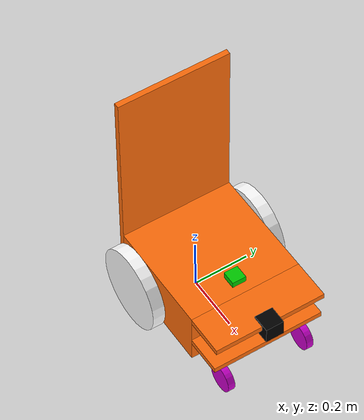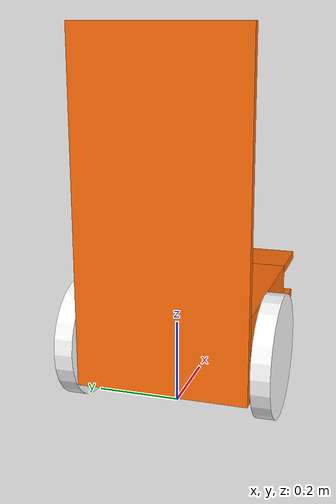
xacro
<?xml version="1.0"?>
<robot xmlns:xacro="http://www.ros.org/wiki/xacro" name="orne_box">
  <xacro:property name="PI" value="3.1415926535897931"/>
  <xacro:include filename="$(find orne_box_description)/urdf/material_colors.xacro"/>
  <xacro:include filename="$(find orne_box_description)/urdf/links/base_link.urdf.xacro"/>
  <xacro:include filename="$(find orne_box_description)/urdf/links/caster_wheel_link.urdf.xacro"/>
  <xacro:include filename="$(find orne_box_description)/urdf/links/caster_swivel_link.urdf.xacro"/>
  <xacro:include filename="$(find orne_box_description)/urdf/links/wheel_link.urdf.xacro"/>
  <xacro:include filename="$(find orne_box_description)/urdf/joints/caster_wheel_joint.urdf.xacro"/>
  <xacro:include filename="$(find orne_box_description)/urdf/joints/caster_swivel_joint.urdf.xacro"/>
  <xacro:include filename="$(find orne_box_description)/urdf/joints/wheel_joint.urdf.xacro"/>
  <xacro:include filename="$(find orne_box_description)/urdf/sensors/imu.urdf.xacro"/>
  <xacro:include filename="$(find orne_box_description)/urdf/sensors/mid360.urdf.xacro"/>
  <!-- Setting for base -->
  <xacro:base_link/>
  <!-- Setting for caster -->
  <xacro:caster_wheel_link prefix="left"/>
  <xacro:caster_swivel_link prefix="left"/>
  <xacro:caster_wheel_joint prefix="left"/>
  <xacro:caster_swivel_joint prefix="left" parent="base_link">
    <origin xyz="0.362 0.150 0.108" rpy="0 0 0"/>
  </xacro:caster_swivel_joint>
  <xacro:caster_wheel_link prefix="right"/>
  <xacro:caster_swivel_link prefix="right"/>
  <xacro:caster_wheel_joint prefix="right"/>
  <xacro:caster_swivel_joint prefix="right" parent="base_link">
    <origin xyz="0.362 -0.150 0.108" rpy="0 0 0"/>
  </xacro:caster_swivel_joint>
  <!-- Setting for left wheel -->
  <xacro:wheel_joint prefix="left" parent="base_link">
    <origin xyz="0.0 0.23075 0.145" rpy="${-PI/2} 0 0"/>
    <axis xyz="0 0 1"/>
  </xacro:wheel_joint>
  <xacro:wheel_link prefix="left" width="0.045" radius="0.145">
    <origin xyz="0.0 0.0 0.0" rpy="0 0 0"/>
  </xacro:wheel_link>
  <!-- Setting for right wheel -->
  <xacro:wheel_joint prefix="right" parent="base_link">
    <origin xyz="0.0 -0.23075 0.145" rpy="${-PI/2} 0 0"/>
    <axis xyz="0 0 1"/>
  </xacro:wheel_joint>
  <xacro:wheel_link prefix="right" width="0.045" radius="0.145">
    <origin xyz="0.0 0.0 0.0" rpy="0 0 0"/>
  </xacro:wheel_link>
  <!-- Setting for IMU -->
  <xacro:sensor_imu name="imu" parent="base_link" size="0.05 0.05 0.05">
    <origin xyz="0.23 0.0 0.270" rpy="0 0 0"/>
    <origin_child xyz="0.0 0.0 0.0" rpy="0 0 0"/>
  </xacro:sensor_imu>

  <xacro:sensor_mid360 name="livox_frame" parent="base_link">
	  <origin xyz="0.424 0.0 0.203" rpy="0 3.14159 ${PI/2}"/>
  </xacro:sensor_mid360>

  <!-- Setting for 2D-LiDAR -->
</robot>

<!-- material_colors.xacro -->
<robot>

  <material name="black">
    <color rgba="0.0 0.0 0.0 1.0"/>
  </material>

  <material name="brown">
    <color rgba="${222/255} ${207/255} ${195/255} 1.0"/>
  </material>

  <material name="red">
    <color rgba="0.8 0.0 0.0 1.0"/>
  </material>

  <material name="orange">
    <color rgba="${255/255} ${108/255} ${10/255} 1.0"/>
  </material>

  <material name="yellow">
    <color rgba="0.8 0.8 0.0 1.0"/>
  </material>

  <material name="green">
    <color rgba="0.0 0.8 0.0 1.0"/>
  </material>

  <material name="cyan">
    <color rgba="0.0 0.8 0.8 1.0"/>
  </material>

  <material name="bule">
    <color rgba="0.0 0.0 0.8 1.0"/>
  </material>

  <material name="purple">
    <color rgba="0.8 0.0 0.8 1.0"/>
  </material>

  <material name="gray">
    <color rgba="0.5 0.5 0.5 1.0"/>
  </material>

  <material name="white">
    <color rgba="1.0 1.0 1.0 1.0"/>
  </material>

</robot>

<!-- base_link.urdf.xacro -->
<robot xmlns:xacro="http://www.ros.org/wiki/xacro">
  <xacro:macro name="base_link">

    <!-- base_footprint-->
    <link name="base_footprint"/>
    <joint name="base_joint" type="fixed">
      <origin xyz="0.0 0.0 0.0"/>
      <parent link="base_footprint"/>
      <child link="base_link"/>
    </joint>

    <!-- base_link -->
    <link name="base_link">
      <visual>
        <origin xyz="0.090 0 0.1715" rpy="0 0 0"/>
        <geometry>
          <box size="0.400 0.404 0.202"/>
        </geometry>
        <material name="orange"/>
      </visual>
      <visual>
        <origin xyz="0.36125 0 0.2625" rpy="0 0 0"/>
        <geometry>
          <box size="0.1425 0.404 0.020"/>
        </geometry>
        <material name="orange"/>
      </visual>
      <visual>
        <origin xyz="0.35625 0 0.156" rpy="0 0 0"/>
        <geometry>
          <box size="0.1325 0.404 0.020"/>
        </geometry>
        <material name="orange"/>
      </visual>
      <visual>
        <origin xyz="-0.120 0 0.4815" rpy="0 0 0"/>
        <geometry>
          <box size="0.020 0.404 0.822"/>
        </geometry>
        <material name="orange"/>
      </visual>
      <collision>
        <origin xyz="0.090 0 0.1715" rpy="0 0 0"/>
        <geometry>
          <box size="0.400 0.404 0.202"/>
        </geometry>
      </collision>
      <collision>
        <origin xyz="0.36125 0 0.2625" rpy="0 0 0"/>
        <geometry>
          <box size="0.1425 0.404 0.020"/>
        </geometry>
      </collision>
      <collision>
        <origin xyz="0.35625 0 0.156" rpy="0 0 0"/>
        <geometry>
          <box size="0.1325 0.404 0.020"/>
        </geometry>
      </collision>
      <collision>
        <origin xyz="-0.120 0 0.4815" rpy="0 0 0"/>
        <geometry>
          <box size="0.020 0.404 0.822"/>
        </geometry>
      </collision>
      <inertial>
        <origin xyz="0.090 0 0.1715" rpy="0 0 0"/>
        <mass value="25.0"/>
        <inertia ixx="1.12" ixy="0.0" ixz="0.0" iyy="3.46" iyz="0.0" izz="3.9"/>
      </inertial>
    </link>
  </xacro:macro>
</robot>

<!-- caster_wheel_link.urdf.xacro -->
<robot xmlns:xacro="http://www.ros.org/wiki/xacro">

  <xacro:macro name="caster_wheel_link" params="prefix">

    <link name="${prefix}_caster_wheel_link">

      <visual>
        <origin xyz="0 0 0" rpy="0 0 0"/>
        <geometry>
          <cylinder length="0.025" radius="0.050"/>
        </geometry>
        <material name="purple"/>
      </visual>

      <collision>
        <origin xyz="0 0 0" rpy="0 0 0"/>
        <geometry>
          <cylinder length="0.025" radius="0.050"/>
        </geometry>
      </collision>

      <inertial>
        <origin xyz="0 0 0"/>
        <mass value="0.2"/>
        <inertia ixx="0.001" ixy="0.0" ixz="0.0" iyy="0.001" iyz="0.0" izz="0.001"/>
      </inertial>

    </link>

  </xacro:macro>

</robot>

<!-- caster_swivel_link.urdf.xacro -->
<robot xmlns:xacro="http://www.ros.org/wiki/xacro">

  <xacro:macro name="caster_swivel_link" params="prefix">

    <link name="${prefix}_caster_swivel_link">

      <visual>
        <origin xyz="0 0 0" rpy="0 0 0"/>
        <geometry>
          <box size="0.05 0.05 0.01"/>
        </geometry>
        <material name="purple"/>
      </visual>

      <collision>
        <origin xyz="0 0 0" rpy="0 0 0"/>
        <geometry>
          <box size="0.05 0.05 0.01"/>
        </geometry>
      </collision>

      <inertial>
        <origin xyz="0 0 0"/>
        <mass value="0.1"/>
        <inertia ixx="0.001" ixy="0.0" ixz="0.0" iyy="0.001" iyz="0.0" izz="0.001"/>
      </inertial>

    </link>

  </xacro:macro>

</robot>

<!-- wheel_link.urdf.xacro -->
<robot xmlns:xacro="http://www.ros.org/wiki/xacro">
  <xacro:macro name="wheel_link" params="prefix *origin width radius">
    <link name="wheel_${prefix}_link">
      <visual>
        <xacro:insert_block name="origin"/>
        <geometry>
          <cylinder length="${width}" radius="${radius}"/>
        </geometry>
        <material name="white"/>
      </visual>
      <collision>
        <xacro:insert_block name="origin"/>
        <geometry>
          <cylinder length="${width}" radius="${radius}"/>
        </geometry>
      </collision>
      <inertial>
        <origin xyz="0 0 0"/>
        <mass value="0.15"/>
        <inertia ixx="0.005" ixy="0.0" ixz="0.0" iyy="0.005" iyz="0.0" izz="0.01"/>
      </inertial>
    </link>
  </xacro:macro>
</robot>

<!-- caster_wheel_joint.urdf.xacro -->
<robot xmlns:xacro="http://www.ros.org/wiki/xacro">
  <xacro:macro name="caster_wheel_joint" params="prefix">
    <joint name="${prefix}_caster_wheel_joint" type="continuous">
      <parent link="${prefix}_caster_swivel_link"/>
      <child link="${prefix}_caster_wheel_link"/>
      <origin xyz="0.03 0.0 -0.058" rpy="${-PI/2} 0 0"/>
      <axis xyz="0 0 1"/>
      <limit effort="0.0" velocity="0.0" lower="-1e15" upper="1e15"/>
      <dynamics damping="0.01"/>
    </joint>
  </xacro:macro>
</robot>

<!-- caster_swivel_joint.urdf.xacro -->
<robot xmlns:xacro="http://www.ros.org/wiki/xacro">
  <xacro:macro name="caster_swivel_joint" params="prefix parent *origin">
    <joint name="${prefix}_caster_swivel_joint" type="continuous">
      <parent link="${parent}"/>
      <child link="${prefix}_caster_swivel_link"/>
      <xacro:insert_block name="origin"/>
      <axis xyz="0 0 1"/>
      <limit effort="0.0" velocity="0.0" lower="-1e15" upper="1e15"/>
      <dynamics damping="0.01"/>
    </joint>
  </xacro:macro>
</robot>

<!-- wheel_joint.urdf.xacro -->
<robot xmlns:xacro="http://www.ros.org/wiki/xacro">
  <xacro:macro name="wheel_joint" params="prefix parent *origin *axis">
    <joint name="${prefix}_wheel_joint" type="continuous">
      <parent link="${parent}"/>
      <child link="wheel_${prefix}_link"/>
      <xacro:insert_block name="origin"/>
      <xacro:insert_block name="axis"/>
      <limit effort="10.5" velocity="10.0" lower="-1e15" upper="1e15"/>
      <dynamics damping="0.05"/>
    </joint>
    <transmission name="transmission_${prefix}">
      <type>transmission_interface/SimpleTransmission</type>
      <joint name="${prefix}_wheel_joint">
        <hardwareInterface>hardware_interface/VelocityJointInterface</hardwareInterface>
      </joint>
      <actuator name="${prefix}_motor">
        <hardwareInterface>hardware_interface/VelocityJointInterface</hardwareInterface>
        <mechanicalReduction>1</mechanicalReduction>
      </actuator>
    </transmission>
  </xacro:macro>
</robot>

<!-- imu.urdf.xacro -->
<robot xmlns:xacro="http://ros.org/wiki/xacro" xmlns:controller="http://playerstage.sourceforge.net/gazebo/xmlschema/#controller" xmlns:interface="http://playerstage.sourceforge.net/gazebo/xmlschema/#interface" name="sensor_imu">
  <xacro:macro name="sensor_imu" params="name parent *origin *origin_child size">
    <joint name="${name}_joint" type="fixed">
      <axis xyz="1 0 0"/>
      <xacro:insert_block name="origin"/>
      <parent link="${parent}"/>
      <child link="${name}_link"/>
    </joint>
    <link name="${name}_link">
      <inertial>
        <origin xyz="0.0 0.0 0.0" rpy="0.0 0.0 0.0"/>
        <mass value="0.005"/>
        <inertia ixx="0.001" ixy="0.0" ixz="0.0" iyy="0.001" iyz="0.0" izz="0.001"/>
      </inertial>
    </link>

    <joint name="${name}_base_joint" type="fixed">
      <axis xyz="1 0 0"/>
      <xacro:insert_block name="origin_child"/>
      <parent link="${name}_link"/>
      <child link="${name}"/>
    </joint>
    <link name="${name}">
      <inertial>
        <origin xyz="0.0 0.0 0.0" rpy="0.0 0.0 0.0"/>
        <mass value="0.005"/>
        <inertia ixx="0.001" ixy="0.0" ixz="0.0" iyy="0.001" iyz="0.0" izz="0.001"/>
      </inertial>
      <visual>
        <origin rpy="0 0 0" xyz="0 0 0"/>
        <geometry>
          <box size="${size}"/>
        </geometry>
        <material name="green"/>
      </visual>
    </link>
  </xacro:macro>
</robot>

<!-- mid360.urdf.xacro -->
<robot xmlns:xacro="http://www.ros.org/wiki/xacro">
  <xacro:macro name="sensor_mid360" params="name parent *origin">
    <joint name="${name}_joint" type="fixed">
      <xacro:insert_block name="origin"/>
      <parent link="${parent}"/>
      <child link="${name}"/>
    </joint>

    <!-- MID360 -->
    <link name="${name}">
      <visual>
        <origin xyz="0 0 -0.047" rpy="0 0 0"/>
        <geometry>
          <box size="0.065 0.065 0.060"/>
        </geometry>
        <material name="black"/>
      </visual>
      <collision>
        <origin xyz="0 0 -0.047" rpy="0 0 0"/>
        <geometry>
          <box size="0.065 0.065 0.060"/>
        </geometry>
      </collision>
    </link>
    <!-- MID360 -->

  </xacro:macro>
</robot>
